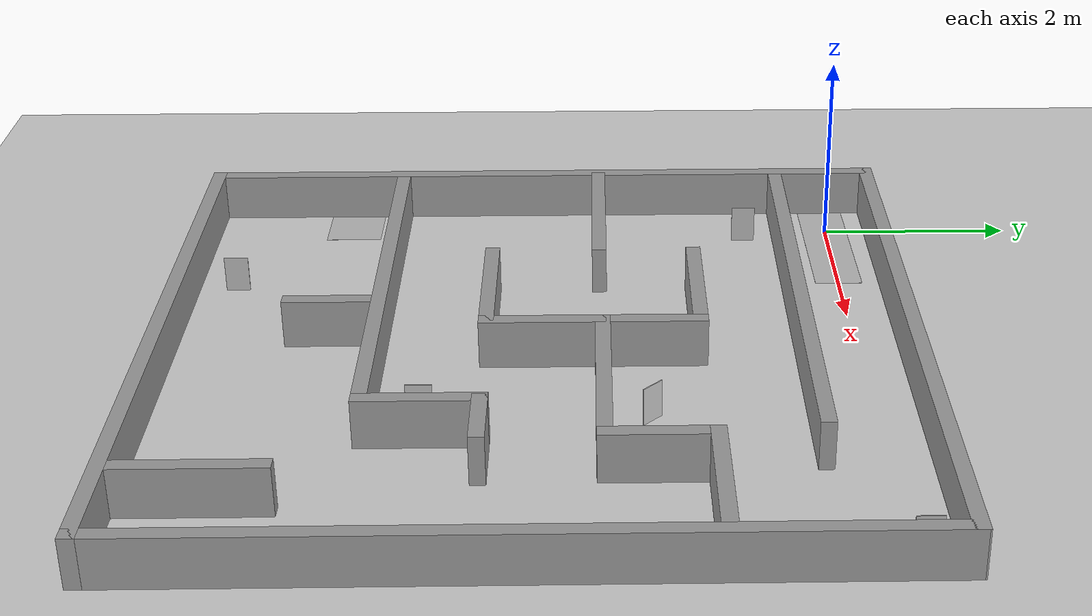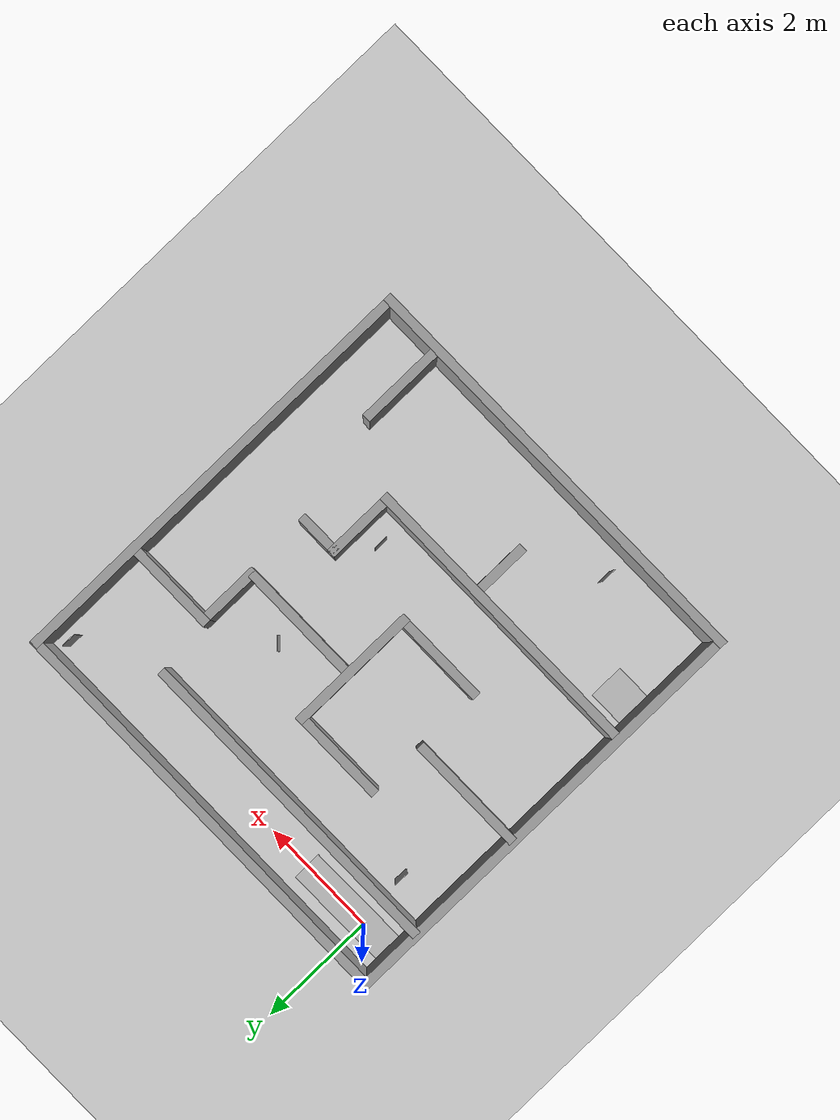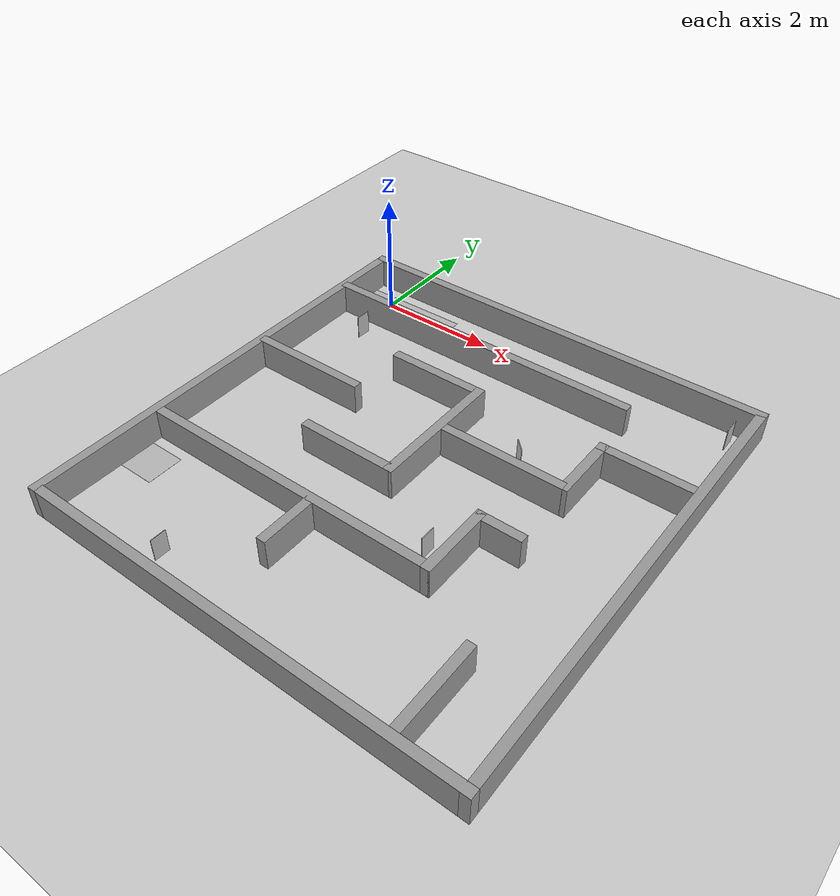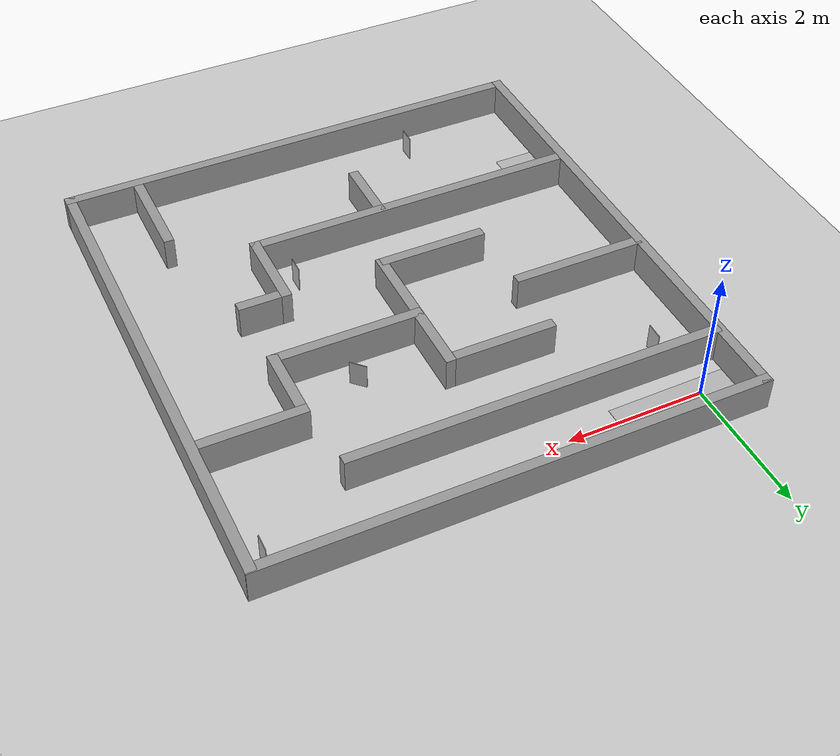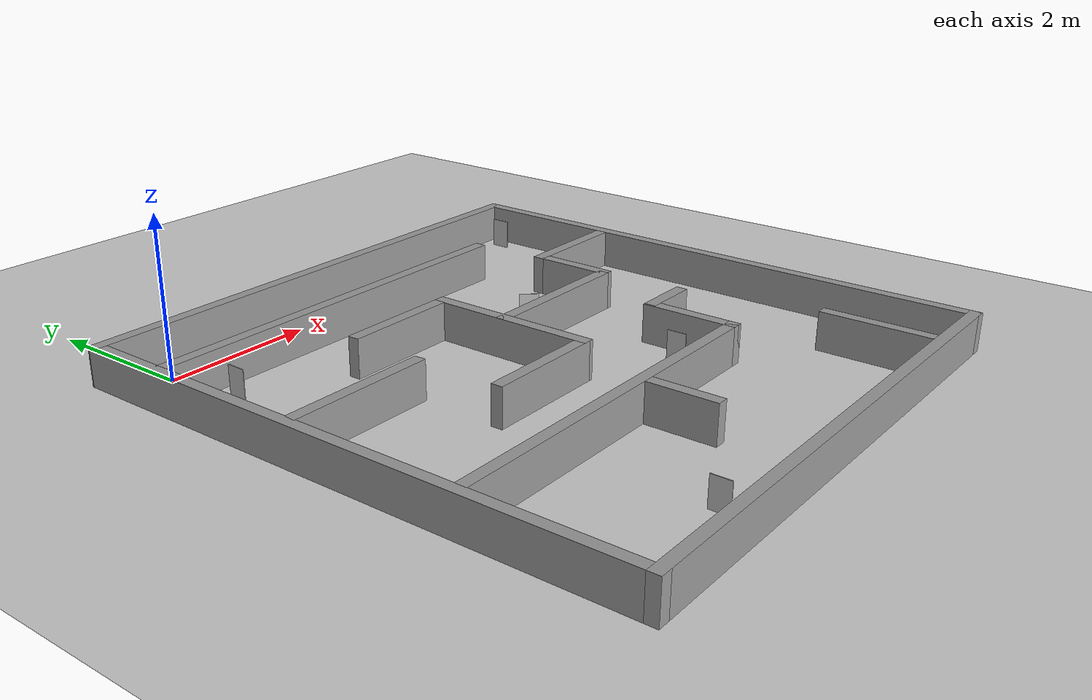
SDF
<sdf version="1.6">
 <world name="default">
  <light name="sun" type="directional">
   <pose>0 0 10 0 -0 0</pose>
   <diffuse>0.8 0.8 0.8 1</diffuse>
   <specular>0.2 0.2 0.2 1</specular>
   <attenuation>
    <range>1000</range>
    <constant>0.9</constant>
    <linear>0.01</linear>
    <quadratic>0.001</quadratic>
   </attenuation>
   <direction>-0.5 0.1 -0.9</direction>
  </light>
  <model name="ground_plane">
   <static>1</static>
   <link name="link">
    <collision name="collision">
     <geometry><plane><normal>0 0 1</normal><size>100 100</size></plane></geometry>
     <surface>
      <contact><collide_bitmask>65535</collide_bitmask></contact>
      <friction><ode><mu>100</mu><mu2>50</mu2></ode></friction>
     </surface>
    </collision>
    <visual name="visual">
     <cast_shadows>0</cast_shadows>
     <geometry><plane><normal>0 0 1</normal><size>100 100</size></plane></geometry>
     <material>
      <script><uri>file://media/materials/scripts/gazebo.material</uri><name>Gazebo/Grey</name></script>
     </material>
    </visual>
   </link>
  </model>
  <gravity>0 0 -9.8</gravity>
  <magnetic_field>6e-06 2.3e-05 -4.2e-05</magnetic_field>
  <atmosphere type="adiabatic"/>
  <physics name="default_physics" default="0" type="ode">
   <max_step_size>0.001</max_step_size>
   <real_time_factor>1</real_time_factor>
   <real_time_update_rate>1000</real_time_update_rate>
  </physics>
  <scene><ambient>0.4 0.4 0.4 1</ambient><background>0.7 0.7 0.7 1</background><shadows>1</shadows></scene>
  <audio><device>default</device></audio>
  <spherical_coordinates>
   <surface_model>EARTH_WGS84</surface_model>
   <latitude_deg>0</latitude_deg>
   <longitude_deg>0</longitude_deg>
   <elevation>0</elevation>
   <heading_deg>0</heading_deg>
  </spherical_coordinates>
  <model name="raceff">
   <link name="Wall_0">
    <pose>0 -3.68256 0 0 -0 0</pose>
    <visual name="Wall_0_Visual">
     <pose>0 0 0.25 0 -0 0</pose>
     <geometry><box><size>7.25 0.15 0.5</size></box></geometry>
     <material>
      <script><uri>file://media/materials/scripts/gazebo.material</uri><name>Gazebo/Grey</name></script>
      <ambient>1 1 1 1</ambient>
     </material>
     <meta><layer>0</layer></meta>
    </visual>
    <collision name="Wall_0_Collision">
     <pose>0 0 0.25 0 -0 0</pose>
     <geometry><box><size>7.25 0.15 0.5</size></box></geometry>
     <surface>
      <friction>
       <ode><mu>1</mu><mu2>1</mu2><fdir1>0 0 0</fdir1><slip1>0</slip1><slip2>0</slip2></ode>
       <torsional>
        <coefficient>1</coefficient>
        <patch_radius>0</patch_radius>
        <surface_radius>0</surface_radius>
        <use_patch_radius>1</use_patch_radius>
        <ode><slip>0</slip></ode>
       </torsional>
      </friction>
      <bounce><restitution_coefficient>0</restitution_coefficient><threshold>1e+06</threshold></bounce>
      <contact>
       <collide_without_contact>0</collide_without_contact>
       <collide_without_contact_bitmask>1</collide_without_contact_bitmask>
       <collide_bitmask>1</collide_bitmask>
       <ode>
        <soft_cfm>0</soft_cfm>
        <soft_erp>0.2</soft_erp>
        <kp>1e+13</kp>
        <kd>1</kd>
        <max_vel>0.01</max_vel>
        <min_depth>0</min_depth>
       </ode>
       <bullet>
        <split_impulse>1</split_impulse>
        <split_impulse_penetration_threshold>-0.01</split_impulse_penetration_threshold>
        <soft_cfm>0</soft_cfm>
        <soft_erp>0.2</soft_erp>
        <kp>1e+13</kp>
        <kd>1</kd>
       </bullet>
      </contact>
     </surface>
    </collision>
   </link>
   <link name="Wall_13">
    <pose>3.55 -0.007561 0 0 0 -1.5708</pose>
    <visual name="Wall_13_Visual">
     <pose>0 0 0.25 0 -0 0</pose>
     <geometry><box><size>7.5 0.15 0.5</size></box></geometry>
     <material>
      <script><uri>file://media/materials/scripts/gazebo.material</uri><name>Gazebo/Grey</name></script>
      <ambient>1 1 1 1</ambient>
     </material>
     <meta><layer>0</layer></meta>
    </visual>
    <collision name="Wall_13_Collision">
     <pose>0 0 0.25 0 -0 0</pose>
     <geometry><box><size>7.5 0.15 0.5</size></box></geometry>
     <surface>
      <friction>
       <ode><mu>1</mu><mu2>1</mu2><fdir1>0 0 0</fdir1><slip1>0</slip1><slip2>0</slip2></ode>
       <torsional>
        <coefficient>1</coefficient>
        <patch_radius>0</patch_radius>
        <surface_radius>0</surface_radius>
        <use_patch_radius>1</use_patch_radius>
        <ode><slip>0</slip></ode>
       </torsional>
      </friction>
      <bounce><restitution_coefficient>0</restitution_coefficient><threshold>1e+06</threshold></bounce>
      <contact>
       <collide_without_contact>0</collide_without_contact>
       <collide_without_contact_bitmask>1</collide_without_contact_bitmask>
       <collide_bitmask>1</collide_bitmask>
       <ode>
        <soft_cfm>0</soft_cfm>
        <soft_erp>0.2</soft_erp>
        <kp>1e+13</kp>
        <kd>1</kd>
        <max_vel>0.01</max_vel>
        <min_depth>0</min_depth>
       </ode>
       <bullet>
        <split_impulse>1</split_impulse>
        <split_impulse_penetration_threshold>-0.01</split_impulse_penetration_threshold>
        <soft_cfm>0</soft_cfm>
        <soft_erp>0.2</soft_erp>
        <kp>1e+13</kp>
        <kd>1</kd>
       </bullet>
      </contact>
     </surface>
    </collision>
   </link>
   <link name="Wall_16">
    <pose>-0.803754 2.63593 0 0 -0 0</pose>
    <visual name="Wall_16_Visual">
     <pose>0 0 0.25 0 -0 0</pose>
     <geometry><box><size>5.5 0.15 0.5</size></box></geometry>
     <material>
      <script><uri>file://media/materials/scripts/gazebo.material</uri><name>Gazebo/Grey</name></script>
      <ambient>1 1 1 1</ambient>
     </material>
     <meta><layer>0</layer></meta>
    </visual>
    <collision name="Wall_16_Collision">
     <pose>0 0 0.25 0 -0 0</pose>
     <geometry><box><size>5.5 0.15 0.5</size></box></geometry>
     <surface>
      <friction>
       <ode><mu>1</mu><mu2>1</mu2><fdir1>0 0 0</fdir1><slip1>0</slip1><slip2>0</slip2></ode>
       <torsional>
        <coefficient>1</coefficient>
        <patch_radius>0</patch_radius>
        <surface_radius>0</surface_radius>
        <use_patch_radius>1</use_patch_radius>
        <ode><slip>0</slip></ode>
       </torsional>
      </friction>
      <bounce><restitution_coefficient>0</restitution_coefficient><threshold>1e+06</threshold></bounce>
      <contact>
       <collide_without_contact>0</collide_without_contact>
       <collide_without_contact_bitmask>1</collide_without_contact_bitmask>
       <collide_bitmask>1</collide_bitmask>
       <ode>
        <soft_cfm>0</soft_cfm>
        <soft_erp>0.2</soft_erp>
        <kp>1e+13</kp>
        <kd>1</kd>
        <max_vel>0.01</max_vel>
        <min_depth>0</min_depth>
       </ode>
       <bullet>
        <split_impulse>1</split_impulse>
        <split_impulse_penetration_threshold>-0.01</split_impulse_penetration_threshold>
        <soft_cfm>0</soft_cfm>
        <soft_erp>0.2</soft_erp>
        <kp>1e+13</kp>
        <kd>1</kd>
       </bullet>
      </contact>
     </surface>
    </collision>
   </link>
   <link name="Wall_24">
    <pose>-1.117 1.60767 0 0 -0 0</pose>
    <inertial>
     <mass>1</mass>
     <inertia><ixx>1</ixx><ixy>0</ixy><ixz>0</ixz><iyy>1</iyy><iyz>0</iyz><izz>1</izz></inertia>
    </inertial>
    <visual name="Wall_24_Visual">
     <pose>0.27 0 0.25 0 -0 0</pose>
     <geometry><box><size>1.50561 0.15 0.5</size></box></geometry>
     <material>
      <script><uri>file://media/materials/scripts/gazebo.material</uri><name>Gazebo/Grey</name></script>
      <ambient>1 1 1 1</ambient>
      <shader type="vertex"><normal_map>__default__</normal_map></shader>
      <diffuse>0.7 0.7 0.7 1</diffuse>
      <specular>0.01 0.01 0.01 1</specular>
      <emissive>0 0 0 1</emissive>
     </material>
     <meta><layer>0</layer></meta>
    </visual>
    <collision name="Wall_24_Collision">
     <pose>0.27 0 0.25 0 -0 0</pose>
     <geometry><box><size>1.50561 0.15 0.5</size></box></geometry>
     <surface>
      <friction>
       <ode><mu>1</mu><mu2>1</mu2><fdir1>0 0 0</fdir1><slip1>0</slip1><slip2>0</slip2></ode>
       <torsional>
        <coefficient>1</coefficient>
        <patch_radius>0</patch_radius>
        <surface_radius>0</surface_radius>
        <use_patch_radius>1</use_patch_radius>
        <ode><slip>0</slip></ode>
       </torsional>
      </friction>
      <bounce><restitution_coefficient>0</restitution_coefficient><threshold>1e+06</threshold></bounce>
      <contact>
       <collide_without_contact>0</collide_without_contact>
       <collide_without_contact_bitmask>1</collide_without_contact_bitmask>
       <collide_bitmask>1</collide_bitmask>
       <ode>
        <soft_cfm>0</soft_cfm>
        <soft_erp>0.2</soft_erp>
        <kp>1e+13</kp>
        <kd>1</kd>
        <max_vel>0.01</max_vel>
        <min_depth>0</min_depth>
       </ode>
       <bullet>
        <split_impulse>1</split_impulse>
        <split_impulse_penetration_threshold>-0.01</split_impulse_penetration_threshold>
        <soft_cfm>0</soft_cfm>
        <soft_erp>0.2</soft_erp>
        <kp>1e+13</kp>
        <kd>1</kd>
       </bullet>
      </contact>
     </surface>
    </collision>
   </link>
   <link name="Wall_25">
    <pose>-0.029 0.557668 0 0 0 -1.5708</pose>
    <visual name="Wall_25_Visual">
     <pose>0 0 0.25 0 -0 0</pose>
     <geometry><box><size>2.25 0.15 0.5</size></box></geometry>
     <material>
      <script><uri>file://media/materials/scripts/gazebo.material</uri><name>Gazebo/Grey</name></script>
      <ambient>1 1 1 1</ambient>
     </material>
     <meta><layer>0</layer></meta>
    </visual>
    <collision name="Wall_25_Collision">
     <pose>0 0 0.25 0 -0 0</pose>
     <geometry><box><size>2.25 0.15 0.5</size></box></geometry>
     <surface>
      <friction>
       <ode><mu>1</mu><mu2>1</mu2><fdir1>0 0 0</fdir1><slip1>0</slip1><slip2>0</slip2></ode>
       <torsional>
        <coefficient>1</coefficient>
        <patch_radius>0</patch_radius>
        <surface_radius>0</surface_radius>
        <use_patch_radius>1</use_patch_radius>
        <ode><slip>0</slip></ode>
       </torsional>
      </friction>
      <bounce><restitution_coefficient>0</restitution_coefficient><threshold>1e+06</threshold></bounce>
      <contact>
       <collide_without_contact>0</collide_without_contact>
       <collide_without_contact_bitmask>1</collide_without_contact_bitmask>
       <collide_bitmask>1</collide_bitmask>
       <ode>
        <soft_cfm>0</soft_cfm>
        <soft_erp>0.2</soft_erp>
        <kp>1e+13</kp>
        <kd>1</kd>
        <max_vel>0.01</max_vel>
        <min_depth>0</min_depth>
       </ode>
       <bullet>
        <split_impulse>1</split_impulse>
        <split_impulse_penetration_threshold>-0.01</split_impulse_penetration_threshold>
        <soft_cfm>0</soft_cfm>
        <soft_erp>0.2</soft_erp>
        <kp>1e+13</kp>
        <kd>1</kd>
       </bullet>
      </contact>
     </surface>
    </collision>
   </link>
   <link name="Wall_26">
    <pose>-1.079 -0.492332 0 0 -0 3.14159</pose>
    <inertial>
     <mass>1</mass>
     <inertia><ixx>1</ixx><ixy>0</ixy><ixz>0</ixz><iyy>1</iyy><iyz>0</iyz><izz>1</izz></inertia>
    </inertial>
    <visual name="Wall_26_Visual">
     <pose>-0.27 0 0.25 0 -0 0</pose>
     <geometry><box><size>1.6 0.15 0.5</size></box></geometry>
     <material>
      <script><uri>file://media/materials/scripts/gazebo.material</uri><name>Gazebo/Grey</name></script>
      <ambient>1 1 1 1</ambient>
      <shader type="vertex"><normal_map>__default__</normal_map></shader>
      <diffuse>0.7 0.7 0.7 1</diffuse>
      <specular>0.01 0.01 0.01 1</specular>
      <emissive>0 0 0 1</emissive>
     </material>
     <meta><layer>0</layer></meta>
    </visual>
    <collision name="Wall_26_Collision">
     <pose>-0.27 0 0.25 0 -0 0</pose>
     <geometry><box><size>1.6 0.15 0.5</size></box></geometry>
     <surface>
      <friction>
       <ode><mu>1</mu><mu2>1</mu2><fdir1>0 0 0</fdir1><slip1>0</slip1><slip2>0</slip2></ode>
       <torsional>
        <coefficient>1</coefficient>
        <patch_radius>0</patch_radius>
        <surface_radius>0</surface_radius>
        <use_patch_radius>1</use_patch_radius>
        <ode><slip>0</slip></ode>
       </torsional>
      </friction>
      <bounce><restitution_coefficient>0</restitution_coefficient><threshold>1e+06</threshold></bounce>
      <contact>
       <collide_without_contact>0</collide_without_contact>
       <collide_without_contact_bitmask>1</collide_without_contact_bitmask>
       <collide_bitmask>1</collide_bitmask>
       <ode>
        <soft_cfm>0</soft_cfm>
        <soft_erp>0.2</soft_erp>
        <kp>1e+13</kp>
        <kd>1</kd>
        <max_vel>0.01</max_vel>
        <min_depth>0</min_depth>
       </ode>
       <bullet>
        <split_impulse>1</split_impulse>
        <split_impulse_penetration_threshold>-0.01</split_impulse_penetration_threshold>
        <soft_cfm>0</soft_cfm>
        <soft_erp>0.2</soft_erp>
        <kp>1e+13</kp>
        <kd>1</kd>
       </bullet>
      </contact>
     </surface>
    </collision>
   </link>
   <link name="Wall_32">
    <pose>-2.552 0.623668 0 0 -0 0</pose>
    <visual name="Wall_32_Visual">
     <pose>0 0 0.25 0 -0 0</pose>
     <geometry><box><size>2 0.15 0.5</size></box></geometry>
     <material>
      <script><uri>file://media/materials/scripts/gazebo.material</uri><name>Gazebo/Grey</name></script>
      <ambient>1 1 1 1</ambient>
     </material>
     <meta><layer>0</layer></meta>
    </visual>
    <collision name="Wall_32_Collision">
     <pose>0 0 0.25 0 -0 0</pose>
     <geometry><box><size>2 0.15 0.5</size></box></geometry>
     <surface>
      <friction>
       <ode><mu>1</mu><mu2>1</mu2><fdir1>0 0 0</fdir1><slip1>0</slip1><slip2>0</slip2></ode>
       <torsional>
        <coefficient>1</coefficient>
        <patch_radius>0</patch_radius>
        <surface_radius>0</surface_radius>
        <use_patch_radius>1</use_patch_radius>
        <ode><slip>0</slip></ode>
       </torsional>
      </friction>
      <bounce><restitution_coefficient>0</restitution_coefficient><threshold>1e+06</threshold></bounce>
      <contact>
       <collide_without_contact>0</collide_without_contact>
       <collide_without_contact_bitmask>1</collide_without_contact_bitmask>
       <collide_bitmask>1</collide_bitmask>
       <ode>
        <soft_cfm>0</soft_cfm>
        <soft_erp>0.2</soft_erp>
        <kp>1e+13</kp>
        <kd>1</kd>
        <max_vel>0.01</max_vel>
        <min_depth>0</min_depth>
       </ode>
       <bullet>
        <split_impulse>1</split_impulse>
        <split_impulse_penetration_threshold>-0.01</split_impulse_penetration_threshold>
        <soft_cfm>0</soft_cfm>
        <soft_erp>0.2</soft_erp>
        <kp>1e+13</kp>
        <kd>1</kd>
       </bullet>
      </contact>
     </surface>
    </collision>
   </link>
   <link name="Wall_36">
    <pose>2.729 1.65167 0 0 -0 3.14159</pose>
    <visual name="Wall_36_Visual">
     <pose>0 0 0.25 0 -0 0</pose>
     <geometry><box><size>1.5 0.15 0.5</size></box></geometry>
     <material>
      <script><uri>file://media/materials/scripts/gazebo.material</uri><name>Gazebo/Grey</name></script>
      <ambient>1 1 1 1</ambient>
     </material>
     <meta><layer>0</layer></meta>
    </visual>
    <collision name="Wall_36_Collision">
     <pose>0 0 0.25 0 -0 0</pose>
     <geometry><box><size>1.5 0.15 0.5</size></box></geometry>
     <surface>
      <friction>
       <ode><mu>1</mu><mu2>1</mu2><fdir1>0 0 0</fdir1><slip1>0</slip1><slip2>0</slip2></ode>
       <torsional>
        <coefficient>1</coefficient>
        <patch_radius>0</patch_radius>
        <surface_radius>0</surface_radius>
        <use_patch_radius>1</use_patch_radius>
        <ode><slip>0</slip></ode>
       </torsional>
      </friction>
      <bounce><restitution_coefficient>0</restitution_coefficient><threshold>1e+06</threshold></bounce>
      <contact>
       <collide_without_contact>0</collide_without_contact>
       <collide_without_contact_bitmask>1</collide_without_contact_bitmask>
       <collide_bitmask>1</collide_bitmask>
       <ode>
        <soft_cfm>0</soft_cfm>
        <soft_erp>0.2</soft_erp>
        <kp>1e+13</kp>
        <kd>1</kd>
        <max_vel>0.01</max_vel>
        <min_depth>0</min_depth>
       </ode>
       <bullet>
        <split_impulse>1</split_impulse>
        <split_impulse_penetration_threshold>-0.01</split_impulse_penetration_threshold>
        <soft_cfm>0</soft_cfm>
        <soft_erp>0.2</soft_erp>
        <kp>1e+13</kp>
        <kd>1</kd>
       </bullet>
      </contact>
     </surface>
    </collision>
   </link>
   <link name="Wall_44">
    <pose>0.977 0.647668 0 0 -0 3.14159</pose>
    <visual name="Wall_44_Visual">
     <pose>0 0 0.25 0 -0 0</pose>
     <geometry><box><size>2.15 0.15 0.5</size></box></geometry>
     <material>
      <script><uri>file://media/materials/scripts/gazebo.material</uri><name>Gazebo/Grey</name></script>
      <ambient>1 1 1 1</ambient>
     </material>
     <meta><layer>0</layer></meta>
    </visual>
    <collision name="Wall_44_Collision">
     <pose>0 0 0.25 0 -0 0</pose>
     <geometry><box><size>2.15 0.15 0.5</size></box></geometry>
     <surface>
      <friction>
       <ode><mu>1</mu><mu2>1</mu2><fdir1>0 0 0</fdir1><slip1>0</slip1><slip2>0</slip2></ode>
       <torsional>
        <coefficient>1</coefficient>
        <patch_radius>0</patch_radius>
        <surface_radius>0</surface_radius>
        <use_patch_radius>1</use_patch_radius>
        <ode><slip>0</slip></ode>
       </torsional>
      </friction>
      <bounce><restitution_coefficient>0</restitution_coefficient><threshold>1e+06</threshold></bounce>
      <contact>
       <collide_without_contact>0</collide_without_contact>
       <collide_without_contact_bitmask>1</collide_without_contact_bitmask>
       <collide_bitmask>1</collide_bitmask>
       <ode>
        <soft_cfm>0</soft_cfm>
        <soft_erp>0.2</soft_erp>
        <kp>1e+13</kp>
        <kd>1</kd>
        <max_vel>0.01</max_vel>
        <min_depth>0</min_depth>
       </ode>
       <bullet>
        <split_impulse>1</split_impulse>
        <split_impulse_penetration_threshold>-0.01</split_impulse_penetration_threshold>
        <soft_cfm>0</soft_cfm>
        <soft_erp>0.2</soft_erp>
        <kp>1e+13</kp>
        <kd>1</kd>
       </bullet>
      </contact>
     </surface>
    </collision>
   </link>
   <link name="Wall_47">
    <pose>2.054 1.15167 0 0 0 -1.5708</pose>
    <visual name="Wall_47_Visual">
     <pose>0 0 0.25 0 -0 0</pose>
     <geometry><box><size>1.15 0.15 0.5</size></box></geometry>
     <material>
      <script><uri>file://media/materials/scripts/gazebo.material</uri><name>Gazebo/Grey</name></script>
      <ambient>1 1 1 1</ambient>
     </material>
     <meta><layer>0</layer></meta>
    </visual>
    <collision name="Wall_47_Collision">
     <pose>0 0 0.25 0 -0 0</pose>
     <geometry><box><size>1.15 0.15 0.5</size></box></geometry>
     <surface>
      <friction>
       <ode><mu>1</mu><mu2>1</mu2><fdir1>0 0 0</fdir1><slip1>0</slip1><slip2>0</slip2></ode>
       <torsional>
        <coefficient>1</coefficient>
        <patch_radius>0</patch_radius>
        <surface_radius>0</surface_radius>
        <use_patch_radius>1</use_patch_radius>
        <ode><slip>0</slip></ode>
       </torsional>
      </friction>
      <bounce><restitution_coefficient>0</restitution_coefficient><threshold>1e+06</threshold></bounce>
      <contact>
       <collide_without_contact>0</collide_without_contact>
       <collide_without_contact_bitmask>1</collide_without_contact_bitmask>
       <collide_bitmask>1</collide_bitmask>
       <ode>
        <soft_cfm>0</soft_cfm>
        <soft_erp>0.2</soft_erp>
        <kp>1e+13</kp>
        <kd>1</kd>
        <max_vel>0.01</max_vel>
        <min_depth>0</min_depth>
       </ode>
       <bullet>
        <split_impulse>1</split_impulse>
        <split_impulse_penetration_threshold>-0.01</split_impulse_penetration_threshold>
        <soft_cfm>0</soft_cfm>
        <soft_erp>0.2</soft_erp>
        <kp>1e+13</kp>
        <kd>1</kd>
       </bullet>
      </contact>
     </surface>
    </collision>
   </link>
   <link name="Wall_53">
    <pose>-0.981 -1.57933 0 0 -0 0</pose>
    <visual name="Wall_53_Visual">
     <pose>0 0 0.25 0 -0 0</pose>
     <geometry><box><size>5 0.15 0.5</size></box></geometry>
     <material>
      <script><uri>file://media/materials/scripts/gazebo.material</uri><name>Gazebo/Grey</name></script>
      <ambient>1 1 1 1</ambient>
     </material>
     <meta><layer>0</layer></meta>
    </visual>
    <collision name="Wall_53_Collision">
     <pose>0 0 0.25 0 -0 0</pose>
     <geometry><box><size>5 0.15 0.5</size></box></geometry>
     <surface>
      <friction>
       <ode><mu>1</mu><mu2>1</mu2><fdir1>0 0 0</fdir1><slip1>0</slip1><slip2>0</slip2></ode>
       <torsional>
        <coefficient>1</coefficient>
        <patch_radius>0</patch_radius>
        <surface_radius>0</surface_radius>
        <use_patch_radius>1</use_patch_radius>
        <ode><slip>0</slip></ode>
       </torsional>
      </friction>
      <bounce><restitution_coefficient>0</restitution_coefficient><threshold>1e+06</threshold></bounce>
      <contact>
       <collide_without_contact>0</collide_without_contact>
       <collide_without_contact_bitmask>1</collide_without_contact_bitmask>
       <collide_bitmask>1</collide_bitmask>
       <ode>
        <soft_cfm>0</soft_cfm>
        <soft_erp>0.2</soft_erp>
        <kp>1e+13</kp>
        <kd>1</kd>
        <max_vel>0.01</max_vel>
        <min_depth>0</min_depth>
       </ode>
       <bullet>
        <split_impulse>1</split_impulse>
        <split_impulse_penetration_threshold>-0.01</split_impulse_penetration_threshold>
        <soft_cfm>0</soft_cfm>
        <soft_erp>0.2</soft_erp>
        <kp>1e+13</kp>
        <kd>1</kd>
       </bullet>
      </contact>
     </surface>
    </collision>
   </link>
   <link name="Wall_56">
    <pose>1.444 -1.02933 0 0 -0 1.5708</pose>
    <visual name="Wall_56_Visual">
     <pose>0 0 0.25 0 -0 0</pose>
     <geometry><box><size>1.25 0.15 0.5</size></box></geometry>
     <material>
      <script><uri>file://media/materials/scripts/gazebo.material</uri><name>Gazebo/Grey</name></script>
      <ambient>1 1 1 1</ambient>
     </material>
     <meta><layer>0</layer></meta>
    </visual>
    <collision name="Wall_56_Collision">
     <pose>0 0 0.25 0 -0 0</pose>
     <geometry><box><size>1.25 0.15 0.5</size></box></geometry>
     <surface>
      <friction>
       <ode><mu>1</mu><mu2>1</mu2><fdir1>0 0 0</fdir1><slip1>0</slip1><slip2>0</slip2></ode>
       <torsional>
        <coefficient>1</coefficient>
        <patch_radius>0</patch_radius>
        <surface_radius>0</surface_radius>
        <use_patch_radius>1</use_patch_radius>
        <ode><slip>0</slip></ode>
       </torsional>
      </friction>
      <bounce><restitution_coefficient>0</restitution_coefficient><threshold>1e+06</threshold></bounce>
      <contact>
       <collide_without_contact>0</collide_without_contact>
       <collide_without_contact_bitmask>1</collide_without_contact_bitmask>
       <collide_bitmask>1</collide_bitmask>
       <ode>
        <soft_cfm>0</soft_cfm>
        <soft_erp>0.2</soft_erp>
        <kp>1e+13</kp>
        <kd>1</kd>
        <max_vel>0.01</max_vel>
        <min_depth>0</min_depth>
       </ode>
       <bullet>
        <split_impulse>1</split_impulse>
        <split_impulse_penetration_threshold>-0.01</split_impulse_penetration_threshold>
        <soft_cfm>0</soft_cfm>
        <soft_erp>0.2</soft_erp>
        <kp>1e+13</kp>
        <kd>1</kd>
       </bullet>
      </contact>
     </surface>
    </collision>
   </link>
   <link name="Wall_57">
    <pose>1.619 -0.479332 0 0 -0 0</pose>
    <inertial>
     <mass>1</mass>
     <inertia><ixx>1</ixx><ixy>0</ixy><ixz>0</ixz><iyy>1</iyy><iyz>0</iyz><izz>1</izz></inertia>
    </inertial>
    <visual name="Wall_57_Visual">
     <pose>0.15 0 0.25 0 -0 0</pose>
     <geometry><box><size>0.75 0.15 0.5</size></box></geometry>
     <material>
      <script><uri>file://media/materials/scripts/gazebo.material</uri><name>Gazebo/Grey</name></script>
      <ambient>1 1 1 1</ambient>
      <shader type="vertex"><normal_map>__default__</normal_map></shader>
      <diffuse>0.7 0.7 0.7 1</diffuse>
      <specular>0.01 0.01 0.01 1</specular>
      <emissive>0 0 0 1</emissive>
     </material>
     <meta><layer>0</layer></meta>
    </visual>
    <collision name="Wall_57_Collision">
     <pose>0.15 0 0.25 0 -0 0</pose>
     <geometry><box><size>0.75 0.15 0.5</size></box></geometry>
     <surface>
      <friction>
       <ode><mu>1</mu><mu2>1</mu2><fdir1>0 0 0</fdir1><slip1>0</slip1><slip2>0</slip2></ode>
       <torsional>
        <coefficient>1</coefficient>
        <patch_radius>0</patch_radius>
        <surface_radius>0</surface_radius>
        <use_patch_radius>1</use_patch_radius>
        <ode><slip>0</slip></ode>
       </torsional>
      </friction>
      <bounce><restitution_coefficient>0</restitution_coefficient><threshold>1e+06</threshold></bounce>
      <contact>
       <collide_without_contact>0</collide_without_contact>
       <collide_without_contact_bitmask>1</collide_without_contact_bitmask>
       <collide_bitmask>1</collide_bitmask>
       <ode>
        <soft_cfm>0</soft_cfm>
        <soft_erp>0.2</soft_erp>
        <kp>1e+13</kp>
        <kd>1</kd>
        <max_vel>0.01</max_vel>
        <min_depth>0</min_depth>
       </ode>
       <bullet>
        <split_impulse>1</split_impulse>
        <split_impulse_penetration_threshold>-0.01</split_impulse_penetration_threshold>
        <soft_cfm>0</soft_cfm>
        <soft_erp>0.2</soft_erp>
        <kp>1e+13</kp>
        <kd>1</kd>
       </bullet>
      </contact>
     </surface>
    </collision>
   </link>
   <link name="Wall_6">
    <pose>-3.55 -0.007561 0 0 -0 1.5708</pose>
    <visual name="Wall_6_Visual">
     <pose>0 0 0.25 0 -0 0</pose>
     <geometry><box><size>7.5 0.15 0.5</size></box></geometry>
     <material>
      <script><uri>file://media/materials/scripts/gazebo.material</uri><name>Gazebo/Grey</name></script>
      <ambient>1 1 1 1</ambient>
     </material>
     <meta><layer>0</layer></meta>
    </visual>
    <collision name="Wall_6_Collision">
     <pose>0 0 0.25 0 -0 0</pose>
     <geometry><box><size>7.5 0.15 0.5</size></box></geometry>
     <surface>
      <friction>
       <ode><mu>1</mu><mu2>1</mu2><fdir1>0 0 0</fdir1><slip1>0</slip1><slip2>0</slip2></ode>
       <torsional>
        <coefficient>1</coefficient>
        <patch_radius>0</patch_radius>
        <surface_radius>0</surface_radius>
        <use_patch_radius>1</use_patch_radius>
        <ode><slip>0</slip></ode>
       </torsional>
      </friction>
      <bounce><restitution_coefficient>0</restitution_coefficient><threshold>1e+06</threshold></bounce>
      <contact>
       <collide_without_contact>0</collide_without_contact>
       <collide_without_contact_bitmask>1</collide_without_contact_bitmask>
       <collide_bitmask>1</collide_bitmask>
       <ode>
        <soft_cfm>0</soft_cfm>
        <soft_erp>0.2</soft_erp>
        <kp>1e+13</kp>
        <kd>1</kd>
        <max_vel>0.01</max_vel>
        <min_depth>0</min_depth>
       </ode>
       <bullet>
        <split_impulse>1</split_impulse>
        <split_impulse_penetration_threshold>-0.01</split_impulse_penetration_threshold>
        <soft_cfm>0</soft_cfm>
        <soft_erp>0.2</soft_erp>
        <kp>1e+13</kp>
        <kd>1</kd>
       </bullet>
      </contact>
     </surface>
    </collision>
   </link>
   <link name="Wall_8">
    <pose>0 3.68256 0 0 -0 0</pose>
    <visual name="Wall_8_Visual">
     <pose>0 0 0.25 0 -0 0</pose>
     <geometry><box><size>7.25 0.15 0.5</size></box></geometry>
     <material>
      <script><uri>file://media/materials/scripts/gazebo.material</uri><name>Gazebo/Grey</name></script>
      <ambient>1 1 1 1</ambient>
     </material>
     <meta><layer>0</layer></meta>
    </visual>
    <collision name="Wall_8_Collision">
     <pose>0 0 0.25 0 -0 0</pose>
     <geometry><box><size>7.25 0.15 0.5</size></box></geometry>
     <surface>
      <friction>
       <ode><mu>1</mu><mu2>1</mu2><fdir1>0 0 0</fdir1><slip1>0</slip1><slip2>0</slip2></ode>
       <torsional>
        <coefficient>1</coefficient>
        <patch_radius>0</patch_radius>
        <surface_radius>0</surface_radius>
        <use_patch_radius>1</use_patch_radius>
        <ode><slip>0</slip></ode>
       </torsional>
      </friction>
      <bounce><restitution_coefficient>0</restitution_coefficient><threshold>1e+06</threshold></bounce>
      <contact>
       <collide_without_contact>0</collide_without_contact>
       <collide_without_contact_bitmask>1</collide_without_contact_bitmask>
       <collide_bitmask>1</collide_bitmask>
       <ode>
        <soft_cfm>0</soft_cfm>
        <soft_erp>0.2</soft_erp>
        <kp>1e+13</kp>
        <kd>1</kd>
        <max_vel>0.01</max_vel>
        <min_depth>0</min_depth>
       </ode>
       <bullet>
        <split_impulse>1</split_impulse>
        <split_impulse_penetration_threshold>-0.01</split_impulse_penetration_threshold>
        <soft_cfm>0</soft_cfm>
        <soft_erp>0.2</soft_erp>
        <kp>1e+13</kp>
        <kd>1</kd>
       </bullet>
      </contact>
     </surface>
    </collision>
   </link>
   <static>1</static>
   <pose>2.9706 -3.18013 0 0 -0 0</pose>
  </model>
  <model name="racetest_plus">
   <pose>3.99187 -5.79794 0 0 -0 0</pose>
   <link name="Wall_1">
    <collision name="Wall_1_Collision">
     <geometry><box><size>1.5 0.15 0.5</size></box></geometry>
     <pose>0 0 0.25 0 -0 0</pose>
    </collision>
    <visual name="Wall_1_Visual">
     <pose>0 0 0.25 0 -0 0</pose>
     <geometry><box><size>1.5 0.15 0.5</size></box></geometry>
     <material>
      <script><uri>file://media/materials/scripts/gazebo.material</uri><name>Gazebo/Grey</name></script>
      <ambient>1 1 1 1</ambient>
     </material>
     <meta><layer>0</layer></meta>
    </visual>
    <pose>1.51 -0.325 0 0 -0 -1.5708</pose>
   </link>
   <link name="Wall_6">
    <collision name="Wall_6_Collision">
     <geometry><box><size>1 0.15 0.5</size></box></geometry>
     <pose>0 0 0.25 0 -0 0</pose>
    </collision>
    <visual name="Wall_6_Visual">
     <pose>0 0 0.25 0 -0 0</pose>
     <geometry><box><size>1 0.15 0.5</size></box></geometry>
     <material>
      <script><uri>file://media/materials/scripts/gazebo.material</uri><name>Gazebo/Grey</name></script>
      <ambient>1 1 1 1</ambient>
     </material>
     <meta><layer>0</layer></meta>
    </visual>
    <pose>-1.51 0.575 0 0 -0 1.5708</pose>
   </link>
   <static>1</static>
  </model>
  <model name="start_plane">
   <static>1</static>
   <link name="link">
    <collision name="collision">
     <geometry><plane><normal>0 0 1</normal><size>0.5 1.8</size></plane></geometry>
     <surface><friction><ode><mu>100</mu><mu2>50</mu2></ode></friction></surface>
    </collision>
    <visual name="visual">
     <cast_shadows>0</cast_shadows>
     <geometry><plane><normal>0 0 1</normal><size>0.5 1.8</size></plane></geometry>
     <material>
      <script>
       <uri>model://start_plane/materials/scripts</uri>
       <uri>model://start_plane/materials/textures/</uri>
       <name>StartPlane/Image</name>
      </script>
     </material>
    </visual>
   </link>
   <pose>0.365307 -0.005 0 0 0 -1.56</pose>
  </model>
  <model name="end_plane">
   <static>1</static>
   <link name="link">
    <collision name="collision">
     <geometry><plane><normal>0 0 1</normal><size>0.6 0.6</size></plane></geometry>
     <surface><friction><ode><mu>100</mu><mu2>50</mu2></ode></friction></surface>
    </collision>
    <visual name="visual">
     <cast_shadows>0</cast_shadows>
     <geometry><plane><normal>0 0 1</normal><size>0.6 0.6</size></plane></geometry>
     <material>
      <script>
       <uri>model://end_plane/materials/scripts</uri>
       <uri>model://end_plane/materials/textures/</uri>
       <name>EndPlane/Image</name>
      </script>
     </material>
    </visual>
   </link>
   <pose>-0.202 -5.296 0 0 0 -1.57</pose>
  </model>
  <model name="green_light">
   <static>1</static>
   <link name="link">
    <collision name="collision">
     <geometry><box><size>0.25 0.01 0.4</size></box></geometry>
     <surface><friction><ode><mu>100</mu><mu2>50</mu2></ode></friction></surface>
    </collision>
    <visual name="visual">
     <geometry><box><size>0.25 0.01 0.4</size></box></geometry>
     <material>
      <script>
       <uri>model://green_light/materials/scripts</uri>
       <uri>model://green_light/materials/textures/</uri>
       <name>GreenLight/Image</name>
      </script>
     </material>
    </visual>
   </link>
   <pose>4.02215 -2.07682 0.174742 0 -0 2.35516</pose>
  </model>
  <light name="user_point_light_0" type="point">
   <pose>5.87174 0.107535 1 0 -0 0</pose>
   <diffuse>0.5 0.5 0.5 1</diffuse>
   <specular>0.1 0.1 0.1 1</specular>
   <attenuation>
    <range>20</range>
    <constant>0.5</constant>
    <linear>0.01</linear>
    <quadratic>0.001</quadratic>
   </attenuation>
   <cast_shadows>0</cast_shadows>
   <direction>0 0 -1</direction>
  </light>
  <model name="go_right">
   <static>1</static>
   <link name="link">
    <collision name="collision">
     <geometry><box><size>0.25 0.01 0.4</size></box></geometry>
     <surface><friction><ode><mu>100</mu><mu2>50</mu2></ode></friction></surface>
    </collision>
    <visual name="visual">
     <geometry><box><size>0.25 0.01 0.4</size></box></geometry>
     <material>
      <script>
       <uri>model://go_right/materials/scripts</uri>
       <uri>model://go_right/materials/textures/</uri>
       <name>GoRight/Image</name>
      </script>
     </material>
    </visual>
   </link>
   <pose>6.23675 0.148815 0.193776 -0.00136 8.2e-05 -1.57597</pose>
  </model>
  <model name="speed">
   <static>1</static>
   <link name="link">
    <collision name="collision">
     <geometry><box><size>0.25 0.01 0.4</size></box></geometry>
     <surface><friction><ode><mu>100</mu><mu2>50</mu2></ode></friction></surface>
    </collision>
    <visual name="visual">
     <geometry><box><size>0.25 0.01 0.4</size></box></geometry>
     <material>
      <script>
       <uri>model://speed/materials/scripts</uri>
       <uri>model://speed/materials/textures/</uri>
       <name>Speed/Image</name>
      </script>
     </material>
    </visual>
   </link>
   <pose>0.163615 -0.948092 0.183819 0 -0 1.54386</pose>
  </model>
  <model name="stop">
   <static>1</static>
   <link name="link">
    <collision name="collision">
     <geometry><box><size>0.25 0.01 0.4</size></box></geometry>
     <surface><friction><ode><mu>100</mu><mu2>50</mu2></ode></friction></surface>
    </collision>
    <visual name="visual">
     <geometry><box><size>0.25 0.01 0.4</size></box></geometry>
     <material>
      <script>
       <uri>model://stop/materials/scripts</uri>
       <uri>model://stop/materials/textures/</uri>
       <name>Stop/Image</name>
      </script>
     </material>
    </visual>
   </link>
   <pose>4.02431 -4.25254 0.199212 0 0 -1.56826</pose>
  </model>
  <light name="user_point_light_1" type="point">
   <pose>2.36556 -4.12116 1 0 -0 0</pose>
   <diffuse>0.5 0.5 0.5 1</diffuse>
   <specular>0.1 0.1 0.1 1</specular>
   <attenuation>
    <range>20</range>
    <constant>0.5</constant>
    <linear>0.01</linear>
    <quadratic>0.001</quadratic>
   </attenuation>
   <cast_shadows>0</cast_shadows>
   <direction>0 0 -1</direction>
  </light>
  <model name="yellow_light">
   <static>1</static>
   <link name="link">
    <collision name="collision">
     <geometry><box><size>0.25 0.01 0.4</size></box></geometry>
     <surface><friction><ode><mu>100</mu><mu2>50</mu2></ode></friction></surface>
    </collision>
    <visual name="visual">
     <geometry><box><size>0.25 0.01 0.4</size></box></geometry>
     <material>
      <script>
       <uri>model://yellow_light/materials/scripts</uri>
       <uri>model://yellow_light/materials/textures/</uri>
       <name>YellowLight/Image</name>
      </script>
     </material>
    </visual>
   </link>
   <pose>1.27953 -6.38807 0.167291 0 0 -1.57919</pose>
  </model>
 </world>
</sdf>
